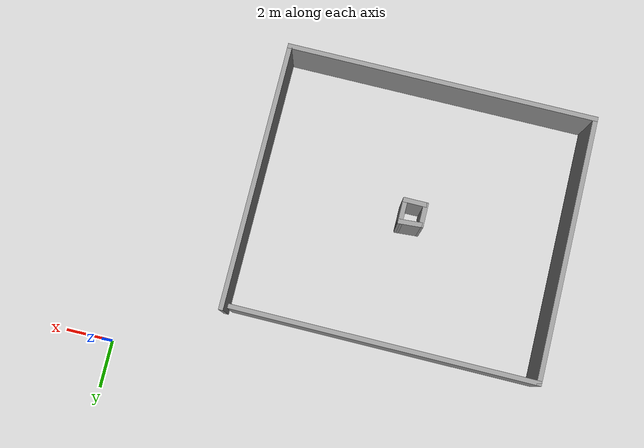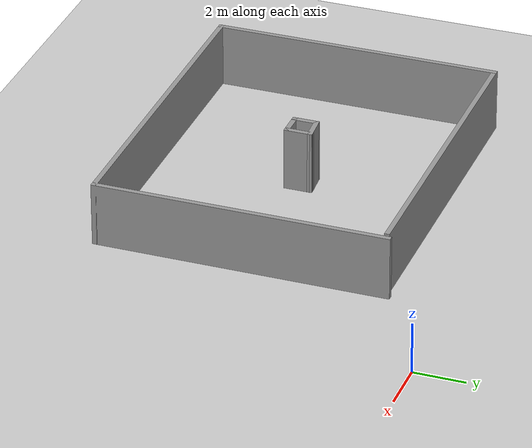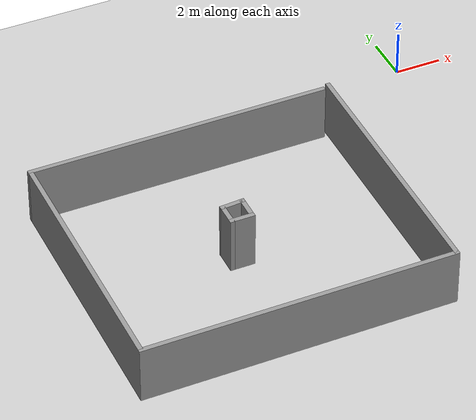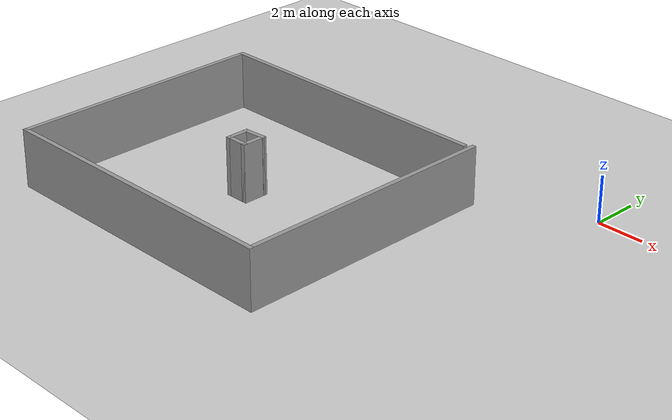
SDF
<?xml version="1.0" ?>
<sdf version="1.4">
  <world name="default">
    <include>
      <uri>model://ground_plane</uri>
    </include>
    <include>
      <uri>model://sun</uri>
    </include>
<model name='simple_room'>
    <link name='Wall_0'>
      <collision name='Wall_0_Collision'>
        <geometry>
          <box>
            <size>12.9611 0.2 2.5</size>
          </box>
        </geometry>
        <pose>0 0 1.25 0 -0 0</pose>
      </collision>
      <visual name='Wall_0_Visual'>
        <pose>0 0 1.25 0 -0 0</pose>
        <geometry>
          <box>
            <size>12.9611 0.2 2.5</size>
          </box>
        </geometry>
        <material>
          <script>
            <uri>file://media/materials/scripts/gazebo.material</uri>
            <name>Gazebo/Grey</name>
          </script>
        </material>
      </visual>
      <velocity_decay>
        <linear>0</linear>
        <angular>0</angular>
      </velocity_decay>
      <pose>-11.1306 -2.51 0 0 -0 3.14159</pose>
    </link>
    <link name='Wall_1'>
      <collision name='Wall_1_Collision'>
        <geometry>
          <box>
            <size>11.3875 0.2 2.5</size>
          </box>
        </geometry>
        <pose>0 0 1.25 0 -0 0</pose>
      </collision>
      <visual name='Wall_1_Visual'>
        <pose>0 0 1.25 0 -0 0</pose>
        <geometry>
          <box>
            <size>11.3875 0.2 2.5</size>
          </box>
        </geometry>
        <material>
          <script>
            <uri>file://media/materials/scripts/gazebo.material</uri>
            <name>Gazebo/Grey</name>
          </script>
        </material>
      </visual>
      <velocity_decay>
        <linear>0</linear>
        <angular>0</angular>
      </velocity_decay>
      <pose>-17.5111 -8.10374 0 0 0 -1.5708</pose>
    </link>
    <link name='Wall_10'>
      <collision name='Wall_10_Collision'>
        <geometry>
          <box>
            <size>1.12292 0.2 2.5</size>
          </box>
        </geometry>
        <pose>0 0 1.25 0 -0 0</pose>
      </collision>
      <visual name='Wall_10_Visual'>
        <pose>0 0 1.25 0 -0 0</pose>
        <geometry>
          <box>
            <size>1.12292 0.2 2.5</size>
          </box>
        </geometry>
        <material>
          <script>
            <uri>file://media/materials/scripts/gazebo.material</uri>
            <name>Gazebo/Grey</name>
          </script>
        </material>
      </visual>
      <velocity_decay>
        <linear>0</linear>
        <angular>0</angular>
      </velocity_decay>
      <pose>-10.6213 -8.00615 0 0 -0 1.5708</pose>
    </link>
    <link name='Wall_11'>
      <collision name='Wall_11_Collision'>
        <geometry>
          <box>
            <size>1.06359 0.2 2.5</size>
          </box>
        </geometry>
        <pose>0 0 1.25 0 -0 0</pose>
      </collision>
      <visual name='Wall_11_Visual'>
        <pose>0 0 1.25 0 -0 0</pose>
        <geometry>
          <box>
            <size>1.06359 0.2 2.5</size>
          </box>
        </geometry>
        <material>
          <script>
            <uri>file://media/materials/scripts/gazebo.material</uri>
            <name>Gazebo/Grey</name>
          </script>
        </material>
      </visual>
      <velocity_decay>
        <linear>0</linear>
        <angular>0</angular>
      </velocity_decay>
      <pose>-11.052 -7.57546 0 0 0 -3.07029</pose>
    </link>
    <link name='Wall_2'>
      <collision name='Wall_2_Collision'>
        <geometry>
          <box>
            <size>13.3041 0.2 2.5</size>
          </box>
        </geometry>
        <pose>0 0 1.25 0 -0 0</pose>
      </collision>
      <visual name='Wall_2_Visual'>
        <pose>0 0 1.25 0 -0 0</pose>
        <geometry>
          <box>
            <size>13.3041 0.2 2.5</size>
          </box>
        </geometry>
        <material>
          <script>
            <uri>file://media/materials/scripts/gazebo.material</uri>
            <name>Gazebo/Grey</name>
          </script>
        </material>
      </visual>
      <velocity_decay>
        <linear>0</linear>
        <angular>0</angular>
      </velocity_decay>
      <pose>-10.959 -13.6975 0 0 -0 0</pose>
    </link>
    <link name='Wall_3'>
      <collision name='Wall_3_Collision'>
        <geometry>
          <box>
            <size>11.5211 0.2 2.5</size>
          </box>
        </geometry>
        <pose>0 0 1.25 0 -0 0</pose>
      </collision>
      <visual name='Wall_3_Visual'>
        <pose>0 0 1.25 0 -0 0</pose>
        <geometry>
          <box>
            <size>11.5211 0.2 2.5</size>
          </box>
        </geometry>
        <material>
          <script>
            <uri>file://media/materials/scripts/gazebo.material</uri>
            <name>Gazebo/Grey</name>
          </script>
        </material>
      </visual>
      <velocity_decay>
        <linear>0</linear>
        <angular>0</angular>
      </velocity_decay>
      <pose>-4.40697 -8.03692 0 0 -0 1.5708</pose>
    </link>
    <link name='Wall_8'>
      <collision name='Wall_8_Collision'>
        <geometry>
          <box>
            <size>1.06139 0.2 2.5</size>
          </box>
        </geometry>
        <pose>0 0 1.25 0 -0 0</pose>
      </collision>
      <visual name='Wall_8_Visual'>
        <pose>0 0 1.25 0 -0 0</pose>
        <geometry>
          <box>
            <size>1.06139 0.2 2.5</size>
          </box>
        </geometry>
        <material>
          <script>
            <uri>file://media/materials/scripts/gazebo.material</uri>
            <name>Gazebo/Grey</name>
          </script>
        </material>
      </visual>
      <velocity_decay>
        <linear>0</linear>
        <angular>0</angular>
      </velocity_decay>
      <pose>-11.4827 -8.03692 0 0 0 -1.5708</pose>
    </link>
    <link name='Wall_9'>
      <collision name='Wall_9_Collision'>
        <geometry>
          <box>
            <size>1.06139 0.2 2.5</size>
          </box>
        </geometry>
        <pose>0 0 1.25 0 -0 0</pose>
      </collision>
      <visual name='Wall_9_Visual'>
        <pose>0 0 1.25 0 -0 0</pose>
        <geometry>
          <box>
            <size>1.06139 0.2 2.5</size>
          </box>
        </geometry>
        <material>
          <script>
            <uri>file://media/materials/scripts/gazebo.material</uri>
            <name>Gazebo/Grey</name>
          </script>
        </material>
      </visual>
      <velocity_decay>
        <linear>0</linear>
        <angular>0</angular>
      </velocity_decay>
      <pose>-11.052 -8.46761 0 0 -0 0</pose>
    </link>
    <static>1</static>
  </model>
  </world>
</sdf>
